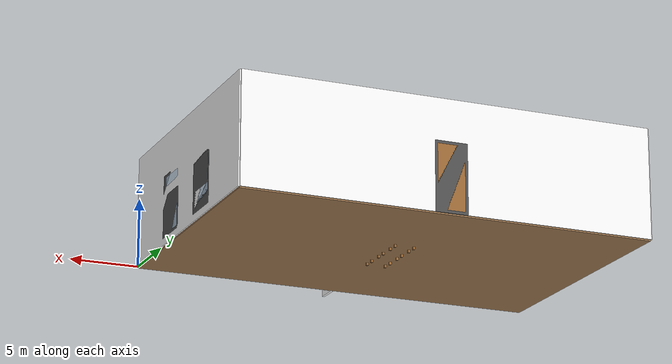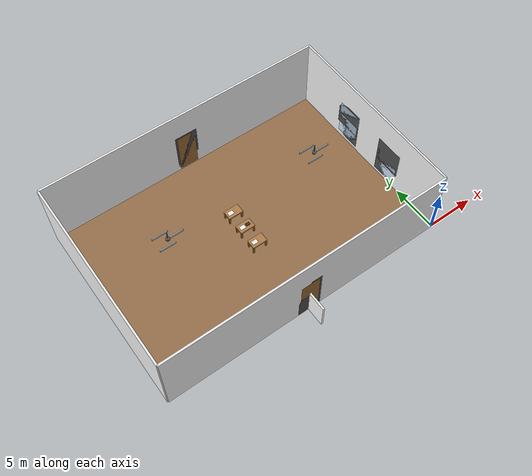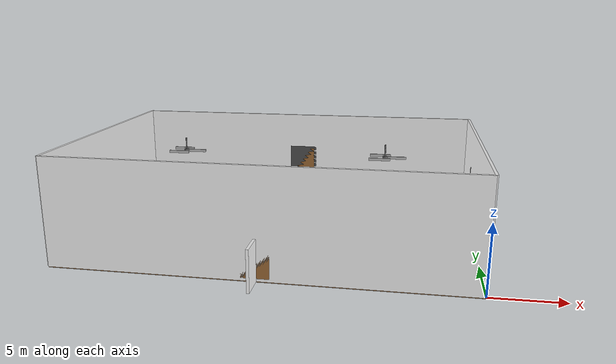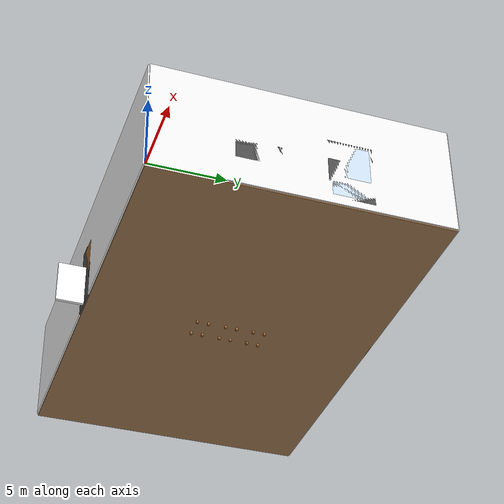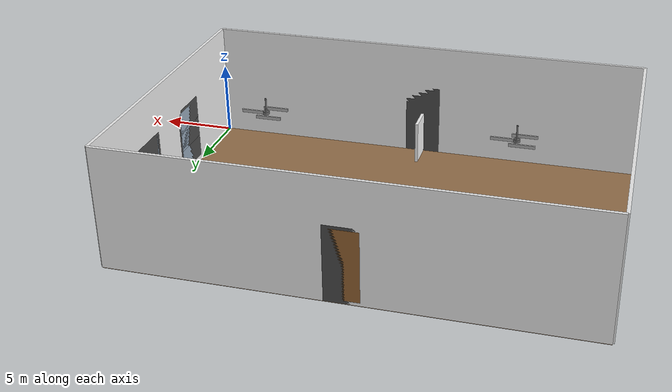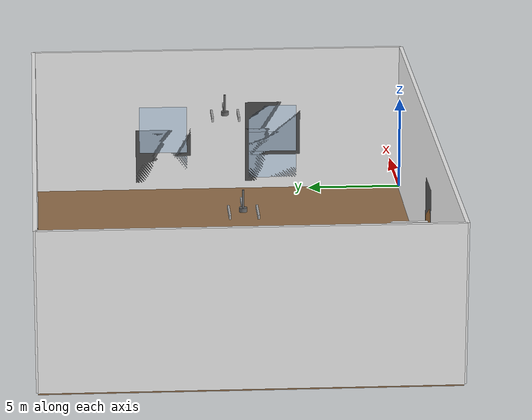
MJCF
<mujoco model="Classroom_Square_Small_Windows_Opposite_Door">
  <compiler angle="radian" inertiafromgeom="true" discardvisual="false"/>
  <option timestep="0.005" integrator="RK4"/>

  <asset>
    <material name="desk_top" rgba="0.7 0.5 0.3 1"/>    <!-- 桌面木色 -->
    <material name="desk_leg" rgba="0.6 0.4 0.2 1"/>    <!-- 桌腿深木色 -->
    <material name="proj" rgba="0.2 0.2 0.2 1"/>        <!-- 投影仪 -->
    <material name="paper" rgba="0.99 0.98 0.95 1"/>    <!-- 试卷 -->
    <material name="screen" rgba="0.97 0.97 0.97 1"/>   <!-- 竖向幕布 -->
    <material name="wood_floor" rgba="0.6 0.45 0.3 1"/> <!-- 木质地板 -->
    <material name="wall_white" rgba="0.95 0.95 0.95 1"/> <!-- 教室墙面 -->
    <material name="wall_frame" rgba="0.3 0.3 0.3 1"/>  <!-- 门窗边框 -->
    <material name="door_wood" rgba="0.6 0.4 0.2 1"/>   <!-- 木门 -->
    <material name="window_glass" rgba="0.8 0.9 1 0.7"/> <!-- 窗户玻璃（高透淡蓝） -->
    <material name="ceiling_white" rgba="0.9 0.9 0.9 1"/> <!-- 加高天花板（8m） -->
    <material name="fan_metal" rgba="0.4 0.4 0.4 1"/>   <!-- 电风扇金属件 -->
    <material name="fan_blade" rgba="0.7 0.7 0.7 1"/>   <!-- 电风扇扇叶 -->
  </asset>

  <worldbody>
    <!-- 全局明亮灯光 -->
    <light name="main_light" pos="5 10 10" dir="-1 -1 -1" diffuse="1 1 1" ambient="0.5 0.5 0.5"/>

    <!-- 1. 封闭立方体教室外壳（地板对齐，天花板8m） -->
    <geom name="classroom_wood_floor" type="box" size="15 10 0.1" pos="-15 10 0" material="wood_floor"/>
    <geom name="classroom_wall_back" type="box" size="15 0.1 4" pos="-15 20 4" material="wall_white"/> <!-- 后门墙 -->
    <geom name="classroom_wall_front" type="box" size="15 0.1 4" pos="-15 0 4" material="wall_white"/>  <!-- 前门墙+幕布贴墙 -->
    <geom name="classroom_wall_left" type="box" size="0.1 10 4" pos="-30 10 4" material="wall_white"/>
    <geom name="classroom_wall_right" type="box" size="0.1 10 4" pos="0 10 4" material="wall_white"/>  <!-- 门对面墙（贴正方形小窗） -->

    <!-- 2. 门窗布局：前后双门+4扇正方形小窗户（门对面右侧墙，均匀排布） -->
    <!-- 前门（前墙，幕布旁，紧贴外壳，居中） -->
    <geom name="door_front_frame" type="box" size="1.2 0.1 2.5" pos="-15 0 2.5" material="wall_frame"/>
    <geom name="door_front_main" type="box" size="1.0 0.1 2.3" pos="-15 0 2.5" material="door_wood"/>
    <!-- 后门（后墙，紧贴外壳，居中） -->
    <geom name="door_back_frame" type="box" size="1.2 0.1 2.5" pos="-15 20 2.5" material="wall_frame"/>
    <geom name="door_back_main" type="box" size="1.0 0.1 2.3" pos="-15 20 2.5" material="door_wood"/>
    <!-- 4扇正方形小窗户（门对面右侧墙，紧贴墙面，2×2矩阵排布） -->
    <!-- 左上窗 -->
    <geom name="window_square1_frame" type="box" size="0.1 1.5 1.5" pos="0 13 3.5" material="wall_frame"/>
    <geom name="window_square1_glass" type="box" size="0.1 1.3 1.3" pos="0 13 3.5" material="window_glass"/>
    <!-- 右上窗 -->
    <geom name="window_square2_frame" type="box" size="0.1 1.5 1.5" pos="0 13 2.0" material="wall_frame"/>
    <geom name="window_square2_glass" type="box" size="0.1 1.3 1.3" pos="0 13 2.0" material="window_glass"/>
    <!-- 左下窗 -->
    <geom name="window_square3_frame" type="box" size="0.1 1.5 1.5" pos="0 7 3.5" material="wall_frame"/>
    <geom name="window_square3_glass" type="box" size="0.1 1.3 1.3" pos="0 7 3.5" material="window_glass"/>
    <!-- 右下窗 -->
    <geom name="window_square4_frame" type="box" size="0.1 1.5 1.5" pos="0 7 2.0" material="wall_frame"/>
    <geom name="window_square4_glass" type="box" size="0.1 1.3 1.3" pos="0 7 2.0" material="window_glass"/>

    <!-- 3. 悬挂式电风扇（2台，对称分布） -->
    <body name="fan1" pos="-23 10 7">
      <geom name="fan1_pole" type="cylinder" size="0.05 0.5" pos="0 0 0" material="fan_metal"/>
      <geom name="fan1_motor" type="cylinder" size="0.2 0.1" pos="0 0 -0.5" material="fan_metal"/>
      <geom name="fan1_blade1" type="box" size="0.8 0.05 0.1" pos="0.8 0 -0.5" material="fan_blade"/>
      <geom name="fan1_blade2" type="box" size="0.8 0.05 0.1" pos="-0.4 0.69 -0.5" material="fan_blade"/>
      <geom name="fan1_blade3" type="box" size="0.8 0.05 0.1" pos="-0.4 -0.69 -0.5" material="fan_blade"/>
    </body>
    <body name="fan2" pos="-7 10 7">
      <geom name="fan2_pole" type="cylinder" size="0.05 0.5" pos="0 0 0" material="fan_metal"/>
      <geom name="fan2_motor" type="cylinder" size="0.2 0.1" pos="0 0 -0.5" material="fan_metal"/>
      <geom name="fan2_blade1" type="box" size="0.8 0.05 0.1" pos="0.8 0 -0.5" material="fan_blade"/>
      <geom name="fan2_blade2" type="box" size="0.8 0.05 0.1" pos="-0.4 0.69 -0.5" material="fan_blade"/>
      <geom name="fan2_blade3" type="box" size="0.8 0.05 0.1" pos="-0.4 -0.69 -0.5" material="fan_blade"/>
    </body>

    <!-- 4. 幕布：位于桌子正前方+紧贴前墙+与投影仪垂直 -->
    <geom name="screen" type="box" size="0.1 2 1.5" pos="-15 0 1.5" material="screen"/>

    <!-- 5. 第1组课桌（居中，投影仪正对前方幕布） -->
    <body name="desk1" pos="-15 10 0">
      <geom name="desk1_top" type="box" size="0.8 0.5 0.08" pos="0 0 1.0" material="desk_top"/>
      <geom name="desk1_leg1" type="box" size="0.08 0.08 0.6" pos="0.7 0.4 0.3" material="desk_leg"/>
      <geom name="desk1_leg2" type="box" size="0.08 0.08 0.6" pos="0.7 -0.4 0.3" material="desk_leg"/>
      <geom name="desk1_leg3" type="box" size="0.08 0.08 0.6" pos="-0.7 0.4 0.3" material="desk_leg"/>
      <geom name="desk1_leg4" type="box" size="0.08 0.08 0.6" pos="-0.7 -0.4 0.3" material="desk_leg"/>
      <geom name="desk1_proj" type="box" size="0.2 0.15 0.08" pos="0.3 0 1.08" material="proj"/>
      <geom name="desk1_paper" type="box" size="0.3 0.2 0.001" pos="-0.3 0 1.085" material="paper"/>
    </body>

    <!-- 6. 第2组课桌（靠近幕布一侧） -->
    <body name="desk2" pos="-15 8.0 0">
      <geom name="desk2_top" type="box" size="0.8 0.5 0.08" pos="0 0 1.0" material="desk_top"/>
      <geom name="desk2_leg1" type="box" size="0.08 0.08 0.6" pos="0.7 0.4 0.3" material="desk_leg"/>
      <geom name="desk2_leg2" type="box" size="0.08 0.08 0.6" pos="0.7 -0.4 0.3" material="desk_leg"/>
      <geom name="desk2_leg3" type="box" size="0.08 0.08 0.6" pos="-0.7 0.4 0.3" material="desk_leg"/>
      <geom name="desk2_leg4" type="box" size="0.08 0.08 0.6" pos="-0.7 -0.4 0.3" material="desk_leg"/>
      <geom name="desk2_paper" type="box" size="0.3 0.2 0.001" pos="-0.3 0 1.085" material="paper"/>
    </body>

    <!-- 7. 第3组课桌（远离幕布一侧） -->
    <body name="desk3" pos="-15 12.0 0">
      <geom name="desk3_top" type="box" size="0.8 0.5 0.08" pos="0 0 1.0" material="desk_top"/>
      <geom name="desk3_leg1" type="box" size="0.08 0.08 0.6" pos="0.7 0.4 0.3" material="desk_leg"/>
      <geom name="desk3_leg2" type="box" size="0.08 0.08 0.6" pos="0.7 -0.4 0.3" material="desk_leg"/>
      <geom name="desk3_leg3" type="box" size="0.08 0.08 0.6" pos="-0.7 0.4 0.3" material="desk_leg"/>
      <geom name="desk3_leg4" type="box" size="0.08 0.08 0.6" pos="-0.7 -0.4 0.3" material="desk_leg"/>
      <geom name="desk3_paper" type="box" size="0.3 0.2 0.001" pos="-0.3 0 1.085" material="paper"/>
    </body>
  </worldbody>
</mujoco>
